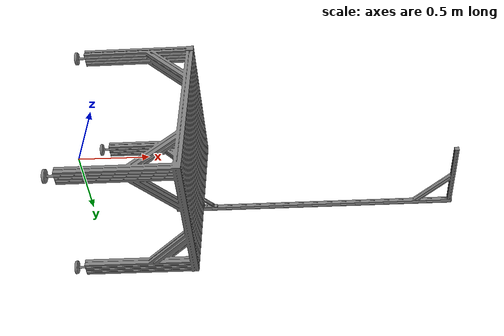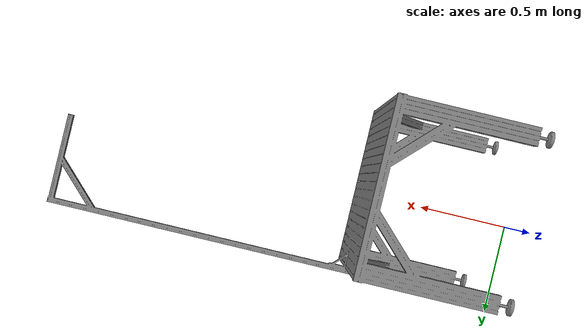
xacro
<?xml version="1.0"?>
<robot xmlns:xacro="http://www.ros.org/wiki/xacro">

  <link name="table_link">
    <inertial>
      <mass value="1.0" />
      <origin xyz="0 0 0"  rpy="0 0 0.0" />
      <inertia ixx="0.001" ixy="0"  ixz="0"
               iyy="0.001" iyz="0"
               izz="0.001"/>
    </inertial>
    <visual>
      <origin xyz="0 0 0" rpy="0 0 0.0" />
      <geometry>
        <mesh filename="package://ur5_manipulation/meshes/RoboterzelleSmaller.stl" scale="0.001 0.001 0.001" />

      </geometry>
      <material name="Grey">
       <color rgba=".5 .5 .5 1.0"/>
      </material>
    </visual>
    <collision>
      <origin xyz="0.42 -0.05 -0.07" rpy="0 0 0" />
      <geometry>
        <box size="0.84 1 1.2" />
      </geometry>
    </collision>
    <collision>
      <origin xyz="1.75 0.45 -0.07" rpy="0 1.57 0" />
      <geometry>
        <cylinder radius ="0.05" length="1.8"/>
      </geometry>
    </collision>
  </link>
  <gazebo reference="table_link">
    <material>Gazebo/Gray</material>-->
  </gazebo>

</robot>
